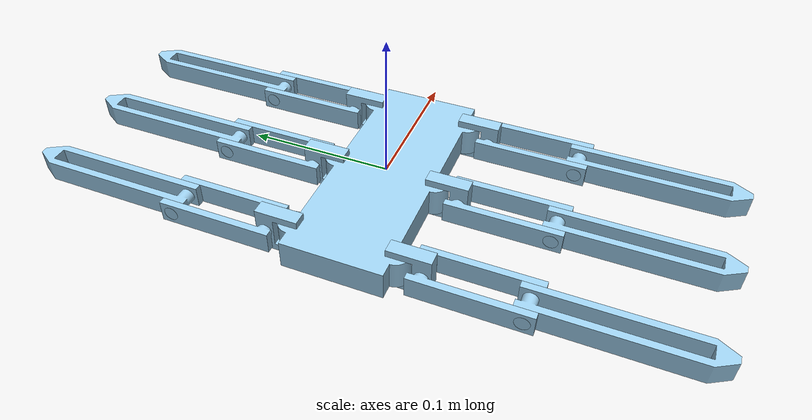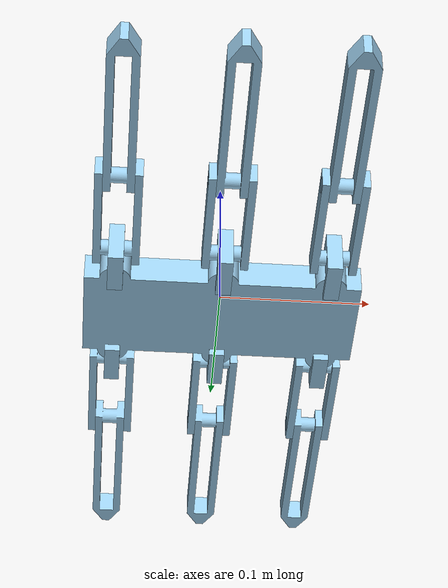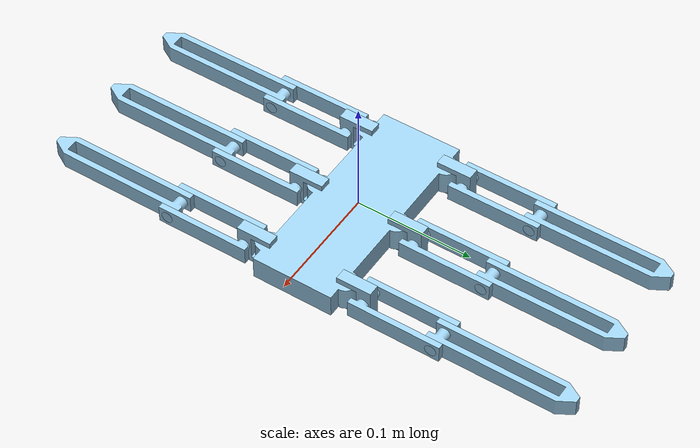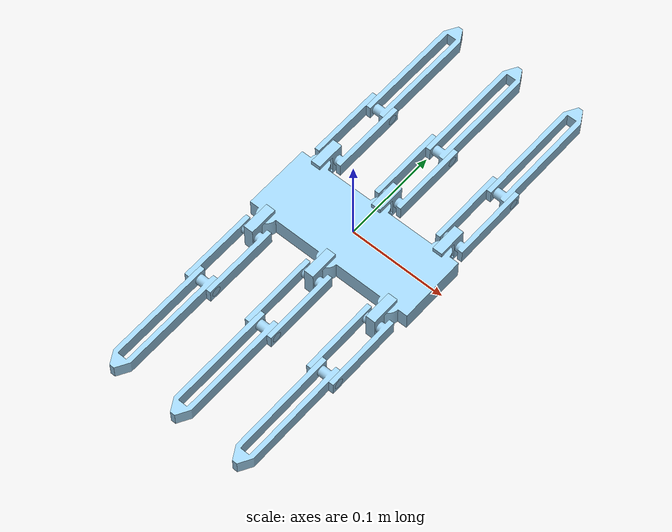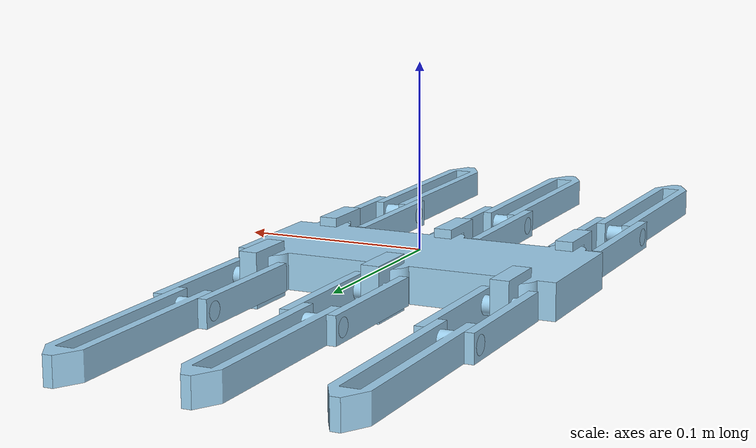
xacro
<?xml version = "1.0"?>
<robot name="onshape" xmlns:xacro="http://www.ros.org/wiki/xacro">
	<!-- This first link called "world" is empty -->
	<!-- A simple fixed joint from our empty world link, to our base. -->
	<!-- The base origin is offset from the world origin. -->
	<!-- This joint and the world link above should be commented out in real simulations -->
	<!-- After fixing the floppy nature of the robot of couse :) (prob inertial tags) -->

	<link name="base_link">
		<visual>
			<origin xyz="0 0 -0.02" rpy="0 0 -1.5707963267948943376" />
			<geometry>
				<mesh filename="file://$(find hexabot)/meshes/body.stl"/>
			</geometry>
			<material name="body_material">
				<color rgba="0.61568627450980395466 0.81176470588235294379 0.92941176470588238168 1.0"/>
			</material>
		</visual>
		<collision>
			<origin xyz="0 0 -0.019999999999999996947" rpy="0 0 -1.5707963267948943376" />
			<geometry>
				<mesh filename="file://$(find hexabot)/meshes/body.stl"/>
			</geometry>
		</collision>
		<inertial>
			<origin xyz="0 0 -0.0099999999999999568401" rpy="0 0 0"/>
			<mass value="2.7501886641472944595" />
			<inertia ixx="0.013588878231084592957" ixy="0"  ixz="0" iyy="0.075777043457423689729" iyz="0" izz="0.087532462579078846188" />
		</inertial>

	</link>

	<link name="coxa">
		<visual>
			<origin xyz="0 0 0.010000000000000000208" rpy="3.141592653589793116 0 0" />
			<geometry>
				<mesh filename="file://$(find hexabot)/meshes/coxa.stl"/>
			</geometry>
			<material name="coxa_material">
				<color rgba="0.61568627450980395466 0.81176470588235294379 0.92941176470588238168 1.0"/>
			</material>
		</visual>
		<collision>
			<origin xyz="0 0 0.010000000000000000208" rpy="3.141592653589793116 0 0" />
			<geometry>
				<mesh filename="file://$(find hexabot)/meshes/coxa.stl"/>
			</geometry>
		</collision>
		<inertial>
			<origin xyz="-0.0098878038941457562644 0 -0" rpy="0 0 0"/>
			<mass value="0.066122388678941153989" />
			<inertia ixx="6.8894459355149516998e-04" ixy="0"  ixz="0" iyy="1.2166590501427852292e-03" iyz="0" izz="6.3103311382374083454e-04" />
		</inertial>
	</link>
	<link name="femur">
		<visual>
			<origin xyz="0 0 0.010000000000000001943" rpy="1.570796326794896558 0 0" />
			<geometry>
				<mesh filename="file://$(find hexabot)/meshes/femur.stl"/>
			</geometry>
			<material name="femur_material">
				<color rgba="0.61568627450980395466 0.81176470588235294379 0.92941176470588238168 1.0"/>
			</material>
		</visual>
		<collision>
			<origin xyz="0 0 0.010000000000000001943" rpy="1.570796326794896558 0 0" />
			<geometry>
				<mesh filename="file://$(find hexabot)/meshes/femur.stl"/>
			</geometry>
		</collision>
		<inertial>
			<origin xyz="-0.026510642456918004362 0 0" rpy="0 0 0"/>
			<mass value="0.13450238867894117462" />
			<inertia ixx="2.1649254300340447321e-03" ixy="0"  ixz="0" iyy="9.0512478346558147629e-03" iyz="0" izz="7.3700503904704461167e-03" />
		</inertial>
	</link>
	<link name="tibia">
		<visual>
			<origin xyz="0 0 -0.015" rpy="-1.570796326794896558 0 0" />
			<geometry>
				<mesh filename="file://$(find hexabot)/meshes/tibia.stl"/>
			</geometry>
			<material name="tibia_material">
				<color rgba="0.61568627450980395466 0.81176470588235294379 0.92941176470588238168 1.0"/>
			</material>
		</visual>
		<collision>
			<origin xyz="0 0 -0.015" rpy="-1.570796326794896558 0 0" />
			<geometry>
				<mesh filename="file://$(find hexabot)/meshes/tibia.stl"/>
			</geometry>
		</collision>
		<inertial>
			<origin xyz="-0.051011411235233193595 0 -0.014999999999999994241" rpy="0 0 0"/>
			<mass value="0.21572830399235441018" />
			<inertia ixx="1.5794660713525416071e-03" ixy="0"  ixz="0" iyy="3.1487609853315266437e-03" iyz="0" izz="3.0675812978539347101e-03" />
		</inertial>
	</link>
	<joint name="leg1_tibia" type="revolute">
		<origin xyz="-0.06500000000000000222 0 -0.015000000000000013323" rpy="3.1415926535897877869 0 0" />
		<parent link="femur" />
		<child link="tibia" />
		<axis xyz="0 0 1"/>
		<limit effort="1" velocity="20" lower="-2.6179938779914944114" upper="2.6179938779914944114"/>
		<dynamics damping="1.0" friction="0.1"/>
	</joint>
	<joint name="leg1_femur" type="revolute">
		<origin xyz="-0.018749999999999995837 0 0" rpy="-1.570796326794896558 0 0" />
		<parent link="coxa" />
		<child link="femur" />
		<axis xyz="0 0 1"/>
		<limit effort="1" velocity="20" lower="-1.570796326794896558" upper="1.570796326794896558"/>
		<dynamics damping="1.0" friction="0.1"/>
	</joint>
	<joint name="leg1_coxa" type="revolute">
		<origin xyz="-0.070000000000000117684 -0.034999999999999344136 -0.0099999999999998978595" rpy="-3.1415926535897917837 0 1.570796326794896336" />
		<parent link="base_link" />
		<child link="coxa" />
		<axis xyz="0 0 1"/>
		<limit effort="1" velocity="20" lower="-0.69813170079773179122" upper="0.69813170079773179122"/>
		<dynamics damping="1.0" friction="0.1"/>
	</joint>
	<link name="coxa_2">
		<visual>
			<origin xyz="0 0 0.010000000000000001943" rpy="3.141592653589793116 0 0" />
			<geometry>
				<mesh filename="file://$(find hexabot)/meshes/coxa.stl"/>
			</geometry>
			<material name="coxa_material">
				<color rgba="0.61568627450980395466 0.81176470588235294379 0.92941176470588238168 1.0"/>
			</material>
		</visual>
		<collision>
			<origin xyz="0 0 0.010000000000000001943" rpy="3.141592653589793116 0 0" />
			<geometry>
				<mesh filename="file://$(find hexabot)/meshes/coxa.stl"/>
			</geometry>
		</collision>
		<inertial>
			<origin xyz="-0.0098878038941457493255 0 0" rpy="0 0 0"/>
			<mass value="0.066122388678941153989" />
			<inertia ixx="6.8894459355149516998e-04" ixy="0"  ixz="0" iyy="1.2166590501427852292e-03" iyz="0" izz="6.3103311382374083454e-04" />
		</inertial>
	</link>
	<link name="femur_2">
		<visual>
			<origin xyz="0 0 0.0099999999999999984734" rpy="1.570796326794896558 0 0" />
			<geometry>
				<mesh filename="file://$(find hexabot)/meshes/femur.stl"/>
			</geometry>
			<material name="femur_material">
				<color rgba="0.61568627450980395466 0.81176470588235294379 0.92941176470588238168 1.0"/>
			</material>
		</visual>
		<collision>
			<origin xyz="0 0 0.0099999999999999984734" rpy="1.570796326794896558 0 0" />
			<geometry>
				<mesh filename="file://$(find hexabot)/meshes/femur.stl"/>
			</geometry>
		</collision>
		<inertial>
			<origin xyz="-0.026510642456918004362 0 0" rpy="0 0 0"/>
			<mass value="0.13450238867894117462" />
			<inertia ixx="2.1649254300340447321e-03" ixy="0"  ixz="0" iyy="9.0512478346558147629e-03" iyz="0" izz="7.3700503904704461167e-03" />
		</inertial>
	</link>
	<link name="tibia_2">
		<visual>
			<origin xyz="0 0 -0.015" rpy="-1.570796326794896558 0 0" />
			<geometry>
				<mesh filename="file://$(find hexabot)/meshes/tibia.stl"/>
			</geometry>
			<material name="tibia_material">
				<color rgba="0.61568627450980395466 0.81176470588235294379 0.92941176470588238168 1.0"/>
			</material>
		</visual>
		<collision>
			<origin xyz="0 0 -0.015" rpy="-1.570796326794896558 0 0" />
			<geometry>
				<mesh filename="file://$(find hexabot)/meshes/tibia.stl"/>
			</geometry>
		</collision>
		<inertial>
			<origin xyz="-0.051011411235233193595 0 -0.014999999999999994241" rpy="0 0 0"/>
			<mass value="0.21572830399235441018" />
			<inertia ixx="1.5794660713525416071e-03" ixy="0"  ixz="0" iyy="3.1487609853315266437e-03" iyz="0" izz="3.0675812978539347101e-03" />
		</inertial>
	</link>
	<joint name="leg2_tibia" type="revolute">
		<origin xyz="-0.06500000000000000222 0 -0.01500000000000000118" rpy="3.1415926535897877869 0 0" />
		<parent link="femur_2" />
		<child link="tibia_2" />
		<axis xyz="0 0 1"/>
		<limit effort="1" velocity="20" lower="-2.6179938779914944114" upper="2.6179938779914944114"/>
		<dynamics damping="1.0" friction="0.1"/>
	</joint>
	<joint name="leg2_femur" type="revolute">
		<origin xyz="-0.018749999999999988898 0 0" rpy="-1.570796326794896558 0 0" />
		<parent link="coxa_2" />
		<child link="femur_2" />
		<axis xyz="0 0 1"/>
		<limit effort="1" velocity="20" lower="-1.570796326794896558" upper="1.570796326794896558"/>
		<dynamics damping="1.0" friction="0.1"/>
	</joint>
	<joint name="leg2_coxa" type="revolute">
		<origin xyz="0 -0.034999999999999642508 -0.0099999999999999932693" rpy="3.1415926535897842342 0 1.5707963267948956698" />
		<parent link="base_link" />
		<child link="coxa_2" />
		<axis xyz="0 0 1"/>
		<limit effort="1" velocity="20" lower="-0.69813170079773179122" upper="0.69813170079773179122"/>
		<dynamics damping="1.0" friction="0.1"/>
	</joint>
	<link name="coxa_3">
		<visual>
			<origin xyz="0 0 0.010000000000000001943" rpy="3.141592653589793116 -0 0" />
			<geometry>
				<mesh filename="file://$(find hexabot)/meshes/coxa.stl"/>
			</geometry>
			<material name="coxa_material">
				<color rgba="0.61568627450980395466 0.81176470588235294379 0.92941176470588238168 1.0"/>
			</material>
		</visual>
		<collision>
			<origin xyz="0 0 0.010000000000000001943" rpy="3.141592653589793116 -0 0" />
			<geometry>
				<mesh filename="file://$(find hexabot)/meshes/coxa.stl"/>
			</geometry>
		</collision>
		<inertial>
			<origin xyz="-0.0098878038941457493255 0 0" rpy="0 0 0"/>
			<mass value="0.066122388678941153989" />
			<inertia ixx="6.8894459355149516998e-04" ixy="0"  ixz="0" iyy="1.2166590501427852292e-03" iyz="0" izz="6.3103311382374083454e-04" />
		</inertial>
	</link>
	<link name="femur_3">
		<visual>
			<origin xyz="0 0 0.009999999999999995004" rpy="1.570796326794896558 0 0" />
			<geometry>
				<mesh filename="file://$(find hexabot)/meshes/femur.stl"/>
			</geometry>
			<material name="femur_material">
				<color rgba="0.61568627450980395466 0.81176470588235294379 0.92941176470588238168 1.0"/>
			</material>
		</visual>
		<collision>
			<origin xyz="0 0 0.009999999999999995004" rpy="1.570796326794896558 0 0" />
			<geometry>
				<mesh filename="file://$(find hexabot)/meshes/femur.stl"/>
			</geometry>
		</collision>
		<inertial>
			<origin xyz="-0.026510642456918004362 0 0" rpy="0 0 0"/>
			<mass value="0.13450238867894117462" />
			<inertia ixx="2.1649254300340447321e-03" ixy="0"  ixz="0" iyy="9.0512478346558147629e-03" iyz="0" izz="7.3700503904704461167e-03" />
		</inertial>
	</link>
	<link name="tibia_3">
		<visual>
			<origin xyz="0 0 -0.015000000000000006384" rpy="-1.570796326794896558 0 0" />
			<geometry>
				<mesh filename="file://$(find hexabot)/meshes/tibia.stl"/>
			</geometry>
			<material name="tibia_material">
				<color rgba="0.61568627450980395466 0.81176470588235294379 0.92941176470588238168 1.0"/>
			</material>
		</visual>
		<collision>
			<origin xyz="0 0 -0.015000000000000006384" rpy="-1.570796326794896558 0 0" />
			<geometry>
				<mesh filename="file://$(find hexabot)/meshes/tibia.stl"/>
			</geometry>
		</collision>
		<inertial>
			<origin xyz="-0.051011411235233193595 0 -0.01500000000000000118" rpy="0 0 0"/>
			<mass value="0.21572830399235441018" />
			<inertia ixx="1.5794660713525416071e-03" ixy="0"  ixz="0" iyy="3.1487609853315266437e-03" iyz="0" izz="3.0675812978539347101e-03" />
		</inertial>
	</link>
	<joint name="leg3_tibia" type="revolute">
		<origin xyz="-0.06500000000000000222 0 -0.015000000000000020262" rpy="-3.1415926535897700234 0 0" />
		<parent link="femur_3" />
		<child link="tibia_3" />
		<axis xyz="0 0 1"/>
		<limit effort="1" velocity="20" lower="-2.6179938779914944114" upper="2.6179938779914944114"/>
		<dynamics damping="1.0" friction="0.1"/>
	</joint>
	<joint name="leg3_femur" type="revolute">
		<origin xyz="-0.018749999999999995837 0 0" rpy="-1.570796326794896558 0 0" />
		<parent link="coxa_3" />
		<child link="femur_3" />
		<axis xyz="0 0 1"/>
		<limit effort="1" velocity="20" lower="-1.570796326794896558" upper="1.570796326794896558"/>
		<dynamics damping="1.0" friction="0.1"/>
	</joint>
	<joint name="leg3_coxa" type="revolute">
		<origin xyz="0.070000000000000103806 -0.034999999999999975575 -0.0099999999999996706107" rpy="3.1415926535897917837 0 1.5707963267949081043" />
		<parent link="base_link" />
		<child link="coxa_3" />
		<axis xyz="0 0 1"/>
		<limit effort="1" velocity="20" lower="-0.69813170079773179122" upper="0.69813170079773179122"/>
		<dynamics damping="1.0" friction="0.1"/>
	</joint>
	<link name="coxa_4">
		<visual>
			<origin xyz="0 0 0.0099999999999999984734" rpy="-3.141592653589793116 0 0" />
			<geometry>
				<mesh filename="file://$(find hexabot)/meshes/coxa.stl"/>
			</geometry>
			<material name="coxa_material">
				<color rgba="0.61568627450980395466 0.81176470588235294379 0.92941176470588238168 1.0"/>
			</material>
		</visual>
		<collision>
			<origin xyz="0 0 0.0099999999999999984734" rpy="-3.141592653589793116 0 0" />
			<geometry>
				<mesh filename="file://$(find hexabot)/meshes/coxa.stl"/>
			</geometry>
		</collision>
		<inertial>
			<origin xyz="-0.0098878038941457493255 0 0" rpy="0 0 0"/>
			<mass value="0.066122388678941153989" />
			<inertia ixx="6.8894459355149516998e-04" ixy="0"  ixz="0" iyy="1.2166590501427852292e-03" iyz="7.7958524123792515929e-38" izz="6.3103311382374083454e-04" />
		</inertial>
	</link>
	<link name="femur_4">
		<visual>
			<origin xyz="0 0 0.009999999999999995004" rpy="1.570796326794896558 0 0" />
			<geometry>
				<mesh filename="file://$(find hexabot)/meshes/femur.stl"/>
			</geometry>
			<material name="femur_material">
				<color rgba="0.61568627450980395466 0.81176470588235294379 0.92941176470588238168 1.0"/>
			</material>
		</visual>
		<collision>
			<origin xyz="0 0 0.009999999999999995004" rpy="1.570796326794896558 0 0" />
			<geometry>
				<mesh filename="file://$(find hexabot)/meshes/femur.stl"/>
			</geometry>
		</collision>
		<inertial>
			<origin xyz="-0.026510642456918004362 0 -8.6736173798840724499e-18" rpy="0 0 0"/>
			<mass value="0.13450238867894117462" />
			<inertia ixx="2.1649254300340447321e-03" ixy="0"  ixz="0" iyy="9.0512478346558147629e-03" iyz="0" izz="7.3700503904704461167e-03" />
		</inertial>
	</link>
	<link name="tibia_4">
		<visual>
			<origin xyz="0 0 -0.015" rpy="-1.570796326794896558 0 0" />
			<geometry>
				<mesh filename="file://$(find hexabot)/meshes/tibia.stl"/>
			</geometry>
			<material name="tibia_material">
				<color rgba="0.61568627450980395466 0.81176470588235294379 0.92941176470588238168 1.0"/>
			</material>
		</visual>
		<collision>
			<origin xyz="0 0 -0.015" rpy="-1.570796326794896558 0 0" />
			<geometry>
				<mesh filename="file://$(find hexabot)/meshes/tibia.stl"/>
			</geometry>
		</collision>
		<inertial>
			<origin xyz="-0.051011411235233193595 -1.8960734682219784444e-18 -0.014999999999999994241" rpy="0 0 0"/>
			<mass value="0.21572830399235441018" />
			<inertia ixx="1.5794660713525416071e-03" ixy="0"  ixz="0" iyy="3.1487609853315266437e-03" iyz="0" izz="3.0675812978539347101e-03" />
		</inertial>
	</link>
	<joint name="leg4_tibia" type="revolute">
		<origin xyz="-0.065000000000000016098 0 -0.015" rpy="3.1415926535897824579 0 0" />
		<parent link="femur_4" />
		<child link="tibia_4" />
		<axis xyz="0 0 1"/>
		<limit effort="1" velocity="20" lower="-2.6179938779914944114" upper="2.6179938779914944114"/>
		<dynamics damping="1.0" friction="0.1"/>
	</joint>
	<joint name="leg4_femur" type="revolute">
		<origin xyz="-0.018749999999999995837 0 0" rpy="-1.570796326794896558 0 0" />
		<parent link="coxa_4" />
		<child link="femur_4" />
		<axis xyz="0 0 1"/>
		<limit effort="1" velocity="20" lower="-1.570796326794896558" upper="1.570796326794896558"/>
		<dynamics damping="1.0" friction="0.1"/>
	</joint>
	<joint name="leg4_coxa" type="revolute">
		<origin xyz="0.070000000000000089928 0.034999999999999371891 -0.0100000000000001147" rpy="-3.1415926535897917837 0 -1.5707963267948972241" />
		<parent link="base_link" />
		<child link="coxa_4" />
		<axis xyz="0 0 1"/>
		<limit effort="1" velocity="20" lower="-0.69813170079773179122" upper="0.69813170079773179122"/>
		<dynamics damping="1.0" friction="0.1"/>
	</joint>
	<link name="coxa_5">
		<visual>
			<origin xyz="0 0 0.010000000000000000208" rpy="3.141592653589793116 0 0" />
			<geometry>
				<mesh filename="file://$(find hexabot)/meshes/coxa.stl"/>
			</geometry>
			<material name="coxa_material">
				<color rgba="0.61568627450980395466 0.81176470588235294379 0.92941176470588238168 1.0"/>
			</material>
		</visual>
		<collision>
			<origin xyz="0 0 0.010000000000000000208" rpy="3.141592653589793116 0 0" />
			<geometry>
				<mesh filename="file://$(find hexabot)/meshes/coxa.stl"/>
			</geometry>
		</collision>
		<inertial>
			<origin xyz="-0.0098878038941457493255 0 0" rpy="0 0 0"/>
			<mass value="0.066122388678941153989" />
			<inertia ixx="6.8894459355149516998e-04" ixy="0"  ixz="0" iyy="1.2166590501427852292e-03" iyz="0" izz="6.3103311382374083454e-04" />
		</inertial>
	</link>
	<link name="femur_5">
		<visual>
			<origin xyz="0 0 0.0099999999999999984734" rpy="1.570796326794896558 0 0" />
			<geometry>
				<mesh filename="file://$(find hexabot)/meshes/femur.stl"/>
			</geometry>
			<material name="femur_material">
				<color rgba="0.61568627450980395466 0.81176470588235294379 0.92941176470588238168 1.0"/>
			</material>
		</visual>
		<collision>
			<origin xyz="0 0 0.0099999999999999984734" rpy="1.570796326794896558 0 0" />
			<geometry>
				<mesh filename="file://$(find hexabot)/meshes/femur.stl"/>
			</geometry>
		</collision>
		<inertial>
			<origin xyz="-0.026510642456918004362 1.7833050232840903573e-18 0" rpy="0 0 0"/>
			<mass value="0.13450238867894117462" />
			<inertia ixx="2.1649254300340447321e-03" ixy="0"  ixz="0" iyy="9.0512478346558147629e-03" iyz="0" izz="7.3700503904704461167e-03" />
		</inertial>
	</link>
	<link name="tibia_5">
		<visual>
			<origin xyz="0 0 -0.015" rpy="-1.570796326794896558 0 0" />
			<geometry>
				<mesh filename="file://$(find hexabot)/meshes/tibia.stl"/>
			</geometry>
			<material name="tibia_material">
				<color rgba="0.61568627450980395466 0.81176470588235294379 0.92941176470588238168 1.0"/>
			</material>
		</visual>
		<collision>
			<origin xyz="0 0 -0.015" rpy="-1.570796326794896558 0 0" />
			<geometry>
				<mesh filename="file://$(find hexabot)/meshes/tibia.stl"/>
			</geometry>
		</collision>
		<inertial>
			<origin xyz="-0.051011411235233193595 -1.6134999224490159944e-19 -0.014999999999999994241" rpy="0 0 0"/>
			<mass value="0.21572830399235441018" />
			<inertia ixx="1.5794660713525416071e-03" ixy="0"  ixz="0" iyy="3.1487609853315266437e-03" iyz="0" izz="3.0675812978539347101e-03" />
		</inertial>
	</link>
	<joint name="leg5_tibia" type="revolute">
		<origin xyz="-0.06500000000000000222 0 -0.01500000000000000118" rpy="3.141592653589793116 0 0" />
		<parent link="femur_5" />
		<child link="tibia_5" />
		<axis xyz="0 0 1"/>
		<limit effort="1" velocity="20" lower="-2.6179938779914944114" upper="2.6179938779914944114"/>
		<dynamics damping="1.0" friction="0.1"/>
	</joint>
	<joint name="leg5_femur" type="revolute">
		<origin xyz="-0.018749999999999995837 -1.8415029557023978118e-19 0" rpy="-1.570796326794896558 0 0" />
		<parent link="coxa_5" />
		<child link="femur_5" />
		<axis xyz="0 0 1"/>
		<limit effort="1" velocity="20" lower="-1.570796326794896558" upper="1.570796326794896558"/>
		<dynamics damping="1.0" friction="0.1"/>
	</joint>
	<joint name="leg5_coxa" type="revolute">
		<origin xyz="-5.7352654186960304952e-18 0.034999999999999677203 -0.0099999999999999967387" rpy="3.141592653589793116 0 -1.5707963267948970021" />
		<parent link="base_link" />
		<child link="coxa_5" />
		<axis xyz="0 0 1"/>
		<limit effort="1" velocity="20" lower="-0.69813170079773179122" upper="0.69813170079773179122"/>
		<dynamics damping="1.0" friction="0.1"/>
	</joint>
	<link name="coxa_6">
		<visual>
			<origin xyz="0 0 0.010000000000000000208" rpy="3.141592653589793116 0 0" />
			<geometry>
				<mesh filename="file://$(find hexabot)/meshes/coxa.stl"/>
			</geometry>
			<material name="coxa_material">
				<color rgba="0.61568627450980395466 0.81176470588235294379 0.92941176470588238168 1.0"/>
			</material>
		</visual>
		<collision>
			<origin xyz="0 0 0.010000000000000000208" rpy="3.141592653589793116 0 0" />
			<geometry>
				<mesh filename="file://$(find hexabot)/meshes/coxa.stl"/>
			</geometry>
		</collision>
		<inertial>
			<origin xyz="-0.0098878038941457493255 0 0" rpy="0 0 0"/>
			<mass value="0.066122388678941153989" />
			<inertia ixx="6.8894459355149516998e-04" ixy="0"  ixz="0" iyy="1.2166590501427852292e-03" iyz="0" izz="6.3103311382374083454e-04" />
		</inertial>
	</link>
	<link name="femur_6">
		<visual>
			<origin xyz="0 0 0.009999999999999995004" rpy="1.570796326794896558 0 0" />
			<geometry>
				<mesh filename="file://$(find hexabot)/meshes/femur.stl"/>
			</geometry>
			<material name="femur_material">
				<color rgba="0.61568627450980395466 0.81176470588235294379 0.92941176470588238168 1.0"/>
			</material>
		</visual>
		<collision>
			<origin xyz="0 0 0.009999999999999995004" rpy="1.570796326794896558 0 0" />
			<geometry>
				<mesh filename="file://$(find hexabot)/meshes/femur.stl"/>
			</geometry>
		</collision>
		<inertial>
			<origin xyz="-0.026510642456918004362 1.7833050232840868906e-18 0" rpy="0 0 0"/>
			<mass value="0.13450238867894117462" />
			<inertia ixx="2.1649254300340447321e-03" ixy="1.1134806509702657624e-35"  ixz="0" iyy="9.0512478346558147629e-03" iyz="0" izz="7.3700503904704461167e-03" />
		</inertial>
	</link>
	<link name="tibia_6">
		<visual>
			<origin xyz="0 0 -0.015" rpy="-1.570796326794896558 0 0" />
			<geometry>
				<mesh filename="file://$(find hexabot)/meshes/tibia.stl"/>
			</geometry>
			<material name="tibia_material">
				<color rgba="0.61568627450980395466 0.81176470588235294379 0.92941176470588238168 1.0"/>
			</material>
		</visual>
		<collision>
			<origin xyz="0 0 -0.015" rpy="-1.570796326794896558 0 0" />
			<geometry>
				<mesh filename="file://$(find hexabot)/meshes/tibia.stl"/>
			</geometry>
		</collision>
		<inertial>
			<origin xyz="-0.051011411235233193595 0 -0.014999999999999994241" rpy="0 0 0"/>
			<mass value="0.21572830399235441018" />
			<inertia ixx="1.5794660713525416071e-03" ixy="0"  ixz="0" iyy="3.1487609853315266437e-03" iyz="0" izz="3.0675812978539347101e-03" />
		</inertial>
	</link>
	<joint name="leg6_tibia" type="revolute">
		<origin xyz="-0.065000000000000016098 0 -0.015" rpy="3.1415926535897775729 0 0" />
		<parent link="femur_6" />
		<child link="tibia_6" />
		<axis xyz="0 0 1"/>
		<limit effort="1" velocity="20" lower="-2.6179938779914944114" upper="2.6179938779914944114"/>
		<dynamics damping="1.0" friction="0.1"/>
	</joint>
	<joint name="leg6_femur" type="revolute">
		<origin xyz="-0.018749999999999988898 0 0" rpy="-1.570796326794896558 0 0" />
		<parent link="coxa_6" />
		<child link="femur_6" />
		<axis xyz="0 0 1"/>
		<limit effort="1" velocity="20" lower="-1.570796326794896558" upper="1.570796326794896558"/>
		<dynamics damping="1.0" friction="0.1"/>
	</joint>
	<joint name="leg6_coxa" type="revolute">
		<origin xyz="-0.070000000000000103806 0.034999999999999982514 -0.0099999999999999568401" rpy="3.1415926535897891192 0 -1.5707963267948974462" />
		<parent link="base_link" />
		<child link="coxa_6" />
		<axis xyz="0 0 1"/>
		<limit effort="1" velocity="20" lower="-0.69813170079773179122" upper="0.69813170079773179122"/>
		<dynamics damping="1.0" friction="0.1"/>
	</joint>

	<gazebo reference = "tibia">
		<kp>1e5</kp>
		<kd>100</kd>
		<mu1>1.5</mu1>
		<mu2>1.5</mu2>
		<minDepth>0.002</minDepth>
	</gazebo>

	<gazebo reference = "tibia_2">
		<kp>1e5</kp>
		<kd>100</kd>
		<mu1>1.5</mu1>
		<mu2>1.5</mu2>
		<minDepth>0.002</minDepth>
	</gazebo>

	<gazebo reference = "tibia_3">
		<kp>1e5</kp>
		<kd>100</kd>
		<mu1>1.5</mu1>
		<mu2>1.5</mu2>
		<minDepth>0.002</minDepth>
	</gazebo>

	<gazebo reference = "tibia_4">
		<kp>1e5</kp>
		<kd>100</kd>
		<mu1>1.5</mu1>
		<mu2>1.5</mu2>
		<minDepth>0.002</minDepth>
	</gazebo>

	<gazebo reference = "tibia_5">
		<kp>1e5</kp>
		<kd>100</kd>
		<mu1>1.5</mu1>
		<mu2>1.5</mu2>
		<minDepth>0.002</minDepth>
	</gazebo>

	<gazebo reference = "tibia_6">
		<kp>1e5</kp>
		<kd>100</kd>
		<mu1>1.5</mu1>
		<mu2>1.5</mu2>
		<minDepth>0.002</minDepth>
	</gazebo>

</robot>
